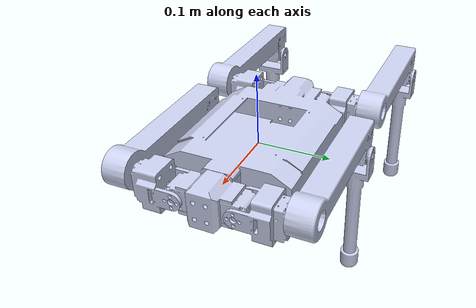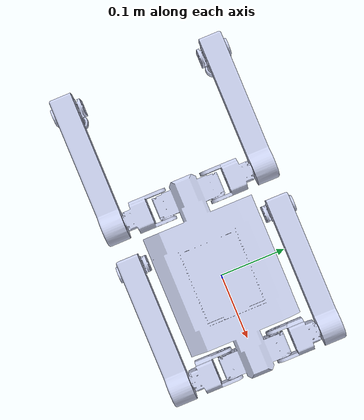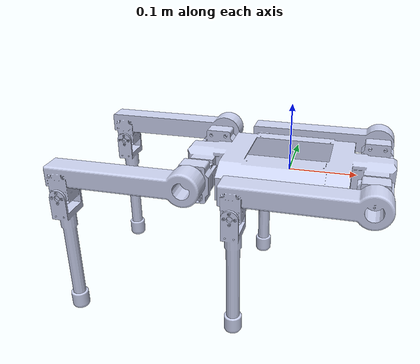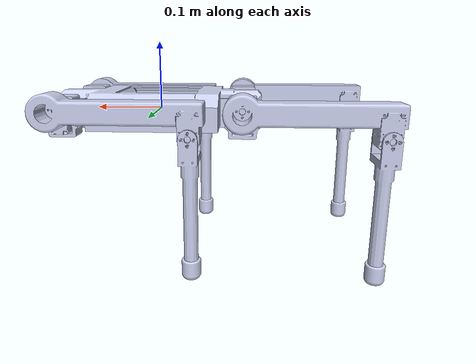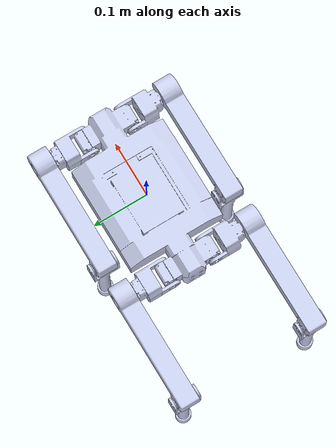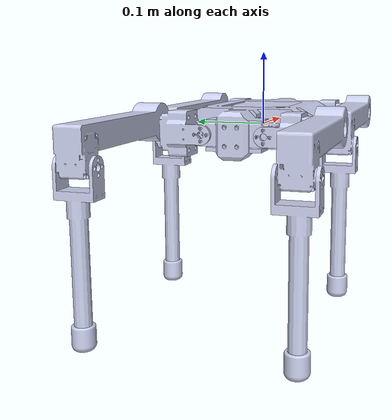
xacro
<?xml version="1.0"?>
<robot name="mintchoco1" xmlns:xacro="http://ros.org/wiki/xacro">

  <!-- Import Rviz colors -->

  <!-- Import all Gazebo-customization elements, including Gazebo colors -->
  <xacro:include filename="$(find mintchoco1_description)/urdf/mintchoco1.gazebo.xacro" />

  <!-- Import Transmission -->
  <xacro:include filename="$(find mintchoco1_description)/urdf/mintchoco1.transmission.xacro" />

  <!-- Import URDF -->
  <xacro:include filename="$(find mintchoco1_description)/urdf/mintchoco1.urdf2.xacro" />

</robot>

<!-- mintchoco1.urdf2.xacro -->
<robot name="mintchoco1" xmlns:xacro="http://ros.org/wiki/xacro">
  <xacro:include filename="$(find mintchoco1_description)/urdf/properties.urdf.xacro" />
  <!-- Fix the base_link -->
  <link name="world"/>

  <joint name="planar" type="planar">
    <parent link="world"/>
    <child link="base_link"/>
     <origin xyz="0.0 0.0 0.0" rpy="0 0 0" />
  </joint>

  <link name="base_link">
    <inertial>
      <origin
        xyz="0.00035091 -1.3484E-17 -0.0043115"
        rpy="0 0 0" />
      <mass
        value="${base_mass}" />
            <inertia ixx="${(1/12) * base_mass * (base_y_length * base_y_length + base_z_length * base_z_length)}" ixy="0.0" ixz="0.0"
                     iyy="${(1/12) * base_mass * (base_x_length * base_x_length + base_z_length * base_z_length)}" iyz="0.0"
                     izz="${(1/12) * base_mass * (base_x_length * base_x_length + base_y_length * base_y_length)}" />
    </inertial>
    <visual>
      <origin
        xyz="0 0 0"
        rpy="0 0 0" />
      <geometry>
        <mesh
          filename="package://mintchoco1_description/meshes/base_link.STL" />
      </geometry>
      <material
        name="">
        <color
          rgba="0.79216 0.81961 0.93333 1" />
      </material>
    </visual>
    <collision>
      <origin
        xyz="0 0 0"
        rpy="0 0 0" />
      <geometry>
        <mesh
          filename="package://mintchoco1_description/meshes/base_link.STL" />
      </geometry>
    </collision>
  </link>

  <link
    name="LF_link1">
    <inertial>
      <origin
        xyz="-0.024455 0.035154 0.00033392"
        rpy="0 0 0" />
      <mass
        value="${link1_mass}" />
                <inertia ixx="${(1/12) * link1_mass * (link1_y_length * link1_y_length + link1_z_length * link1_z_length)}" ixy="0.0" ixz="0.0"
                         iyy="${(1/12) * link1_mass * (link1_x_length * link1_x_length + link1_z_length * link1_z_length)}" iyz="0.0"
                         izz="${(1/12) * link1_mass * (link1_x_length * link1_x_length + link1_y_length * link1_y_length)}" />
    </inertial>
    <visual>
      <origin
        xyz="0 0 0"
        rpy="0 0 0" />
      <geometry>
        <mesh
          filename="package://mintchoco1_description/meshes/LF_link1.STL" />
      </geometry>
      <material
        name="">
        <color
          rgba="0.79216 0.81961 0.93333 1" />
      </material>
    </visual>
    <collision>
      <origin
        xyz="0 0 0"
        rpy="0 0 0" />
      <geometry>
        <mesh
          filename="package://mintchoco1_description/meshes/LF_link1.STL" />
      </geometry>
    </collision>
  </link>
  <joint
    name="LF_joint1"
    type="revolute">
    <origin
      xyz="0.1515 0.04025 -0.00175"
      rpy="0 0 0" />
    <parent
      link="base_link" />
    <child
      link="LF_link1" />
    <axis
      xyz="-0.99995 0 0.010204" />
    <limit
      lower="-3.14"
      upper="3.14"
      effort="10"
      velocity="4.8" />
    <!--dynamics damping ="0.7"/-->
  </joint>
  <link
    name="LF_link2">
    <inertial>
      <origin
        xyz="0.00096259 -0.097555 -0.0025994"
        rpy="0 0 0" />
      <mass
        value="${link2_mass}" />
                <inertia ixx="${(1/12) * link2_mass * (link2_y_length * link2_y_length + link2_z_length * link2_z_length)}" ixy="0.0" ixz="0.0"
                         iyy="${(1/12) * link2_mass * (link2_x_length * link2_x_length + link2_z_length * link2_z_length)}" iyz="0.0"
                         izz="${(1/12) * link2_mass * (link2_x_length * link2_x_length + link2_y_length * link2_y_length)}" />
    </inertial>
    <visual>
      <origin
        xyz="0 0 0"
        rpy="0 0 0" />
      <geometry>
        <mesh
          filename="package://mintchoco1_description/meshes/LF_link2.STL" />
      </geometry>
      <material
        name="">
        <color
          rgba="0.79216 0.81961 0.93333 1" />
      </material>
    </visual>
    <collision>
      <origin
        xyz="0 0 0"
        rpy="0 0 0" />
      <geometry>
        <mesh
          filename="package://mintchoco1_description/meshes/LF_link2.STL" />
      </geometry>
    </collision>
  </link>
  <joint
    name="LF_joint2"
    type="revolute">
    <origin
      xyz="-0.024 0.079 0.0125"
      rpy="0 0 -1.5708" />
    <parent
      link="LF_link1" />
    <child
      link="LF_link2" />
    <axis
      xyz="1 0 0" />
    <limit
      lower="-3.14"
      upper="3.14"
      effort="10"
      velocity="4.8" />
    <!--dynamics damping ="0.7"/-->
  </joint>
  <link
    name="LF_link3">
    <inertial>
      <origin
        xyz="0.021928 4.0475E-05 -0.1015"
        rpy="0 0 0" />
      <mass
        value="${link3_mass}" />
                <inertia ixx="${(1/12) * link3_mass * (link3_y_length * link3_y_length + link3_z_length * link3_z_length)}" ixy="0.0" ixz="0.0"
                         iyy="${(1/12) * link3_mass * (link3_x_length * link3_x_length + link3_z_length * link3_z_length)}" iyz="0.0"
                         izz="${(1/12) * link3_mass * (link3_x_length * link3_x_length + link3_y_length * link3_y_length)}" />
    </inertial>
    <visual>
      <origin
        xyz="0 0 0"
        rpy="0 0 0" />
      <geometry>
        <mesh
          filename="package://mintchoco1_description/meshes/LF_link3.STL" />
      </geometry>
      <material
        name="">
        <color
          rgba="0.79216 0.81961 0.93333 1" />
      </material>
    </visual>
    <collision>
      <origin
        xyz="0 0 0"
        rpy="0 0 0" />
      <geometry>
        <mesh
          filename="package://mintchoco1_description/meshes/LF_link3.STL" />
      </geometry>
    </collision>
  </link>
  <joint
    name="LF_joint3"
    type="revolute">
    <origin
      xyz="-0.022 -0.18525 -0.03025"
      rpy="0 0 0" />
    <parent
      link="LF_link2" />
    <child
      link="LF_link3" />
    <axis
      xyz="-1 -0.0017021 0" />
    <limit
      lower="-3.14"
      upper="3.14"
      effort="10"
      velocity="4.8" />
    <!--dynamics damping ="0.7"/-->
  </joint>
  <link
    name="RF_link1">
    <inertial>
      <origin
        xyz="-0.024443 -0.035154 0.00032454"
        rpy="0 0 0" />
      <mass
        value="${link1_mass}" />
                <inertia ixx="${(1/12) * link1_mass * (link1_y_length * link1_y_length + link1_z_length * link1_z_length)}" ixy="0.0" ixz="0.0"
                         iyy="${(1/12) * link1_mass * (link1_x_length * link1_x_length + link1_z_length * link1_z_length)}" iyz="0.0"
                         izz="${(1/12) * link1_mass * (link1_x_length * link1_x_length + link1_y_length * link1_y_length)}" />
    </inertial>
    <visual>
      <origin
        xyz="0 0 0"
        rpy="0 0 0" />
      <geometry>
        <mesh
          filename="package://mintchoco1_description/meshes/RF_link1.STL" />
      </geometry>
      <material
        name="">
        <color
          rgba="0.79216 0.81961 0.93333 1" />
      </material>
    </visual>
    <collision>
      <origin
        xyz="0 0 0"
        rpy="0 0 0" />
      <geometry>
        <mesh
          filename="package://mintchoco1_description/meshes/RF_link1.STL" />
      </geometry>
    </collision>
  </link>
  <joint
    name="RF_joint1"
    type="revolute">
    <origin
      xyz="0.1515 -0.04025 -0.00175"
      rpy="0 0 0" />
    <parent
      link="base_link" />
    <child
      link="RF_link1" />
    <axis
      xyz="0.99999 0 0.005102" />
    <limit
      lower="-3.14"
      upper="3.14"
      effort="10"
      velocity="4.8" />
    <!--dynamics damping ="0.7"/-->
  </joint>
  <link
    name="RF_link2">
    <inertial>
      <origin
        xyz="-0.00096259 -0.097559 -0.0025994"
        rpy="0 0 0" />
      <mass
        value="${link2_mass}" />
                <inertia ixx="${(1/12) * link2_mass * (link2_y_length * link2_y_length + link2_z_length * link2_z_length)}" ixy="0.0" ixz="0.0"
                         iyy="${(1/12) * link2_mass * (link2_x_length * link2_x_length + link2_z_length * link2_z_length)}" iyz="0.0"
                         izz="${(1/12) * link2_mass * (link2_x_length * link2_x_length + link2_y_length * link2_y_length)}" />
    </inertial>
    <visual>
      <origin
        xyz="0 0 0"
        rpy="0 0 0" />
      <geometry>
        <mesh
          filename="package://mintchoco1_description/meshes/RF_link2.STL" />
      </geometry>
      <material
        name="">
        <color
          rgba="0.79216 0.81961 0.93333 1" />
      </material>
    </visual>
    <collision>
      <origin
        xyz="0 0 0"
        rpy="0 0 0" />
      <geometry>
        <mesh
          filename="package://mintchoco1_description/meshes/RF_link2.STL" />
      </geometry>
    </collision>
  </link>
  <joint
    name="RF_joint2"
    type="revolute">
    <origin
      xyz="-0.024 -0.079 0.0125"
      rpy="0 0 -1.5708" />
    <parent
      link="RF_link1" />
    <child
      link="RF_link2" />
    <axis
      xyz="1 0 0" />
    <limit
      lower="-3.14"
      upper="3.14"
      effort="10"
      velocity="4.8" />
    <!--dynamics damping ="0.7"/-->
  </joint>
  <link
    name="RF_link3">
    <inertial>
      <origin
        xyz="-0.021928 -4.0475E-05 -0.1015"
        rpy="0 0 0" />
      <mass
        value="${link3_mass}" />
                <inertia ixx="${(1/12) * link3_mass * (link3_y_length * link3_y_length + link3_z_length * link3_z_length)}" ixy="0.0" ixz="0.0"
                         iyy="${(1/12) * link3_mass * (link3_x_length * link3_x_length + link3_z_length * link3_z_length)}" iyz="0.0"
                         izz="${(1/12) * link3_mass * (link3_x_length * link3_x_length + link3_y_length * link3_y_length)}" />
    </inertial>
    <visual>
      <origin
        xyz="0 0 0"
        rpy="0 0 0" />
      <geometry>
        <mesh
          filename="package://mintchoco1_description/meshes/RF_link3.STL" />
      </geometry>
      <material
        name="">
        <color
          rgba="0.79216 0.81961 0.93333 1" />
      </material>
    </visual>
    <collision>
      <origin
        xyz="0 0 0"
        rpy="0 0 0" />
      <geometry>
        <mesh
          filename="package://mintchoco1_description/meshes/RF_link3.STL" />
      </geometry>
    </collision>
  </link>
  <joint
    name="RF_joint3"
    type="revolute">
    <origin
      xyz="0.022 -0.18525 -0.03025"
      rpy="0 0 0" />
    <parent
      link="RF_link2" />
    <child
      link="RF_link3" />
    <axis
      xyz="-1 -0.0017021 0" />
    <limit
      lower="-3.14"
      upper="3.14"
      effort="10"
      velocity="4.8" />
    <!--dynamics damping ="0.7"/-->
  </joint>
  <link
    name="LB_link1">
    <inertial>
      <origin
        xyz="-0.024455 0.035154 0.00033392"
        rpy="0 0 0" />
      <mass
        value="${link1_mass}" />
                <inertia ixx="${(1/12) * link1_mass * (link1_y_length * link1_y_length + link1_z_length * link1_z_length)}" ixy="0.0" ixz="0.0"
                         iyy="${(1/12) * link1_mass * (link1_x_length * link1_x_length + link1_z_length * link1_z_length)}" iyz="0.0"
                         izz="${(1/12) * link1_mass * (link1_x_length * link1_x_length + link1_y_length * link1_y_length)}" />
    </inertial>
    <visual>
      <origin
        xyz="0 0 0"
        rpy="0 0 0" />
      <geometry>
        <mesh
          filename="package://mintchoco1_description/meshes/LB_link1.STL" />
      </geometry>
      <material
        name="">
        <color
          rgba="0.79216 0.81961 0.93333 1" />
      </material>
    </visual>
    <collision>
      <origin
        xyz="0 0 0"
        rpy="0 0 0" />
      <geometry>
        <mesh
          filename="package://mintchoco1_description/meshes/LB_link1.STL" />
      </geometry>
    </collision>
  </link>
  <joint
    name="LB_joint1"
    type="revolute">
    <origin
      xyz="-0.1025 0.04025 -0.00175"
      rpy="0 0 0" />
    <parent
      link="base_link" />
    <child
      link="LB_link1" />
    <axis
      xyz="-0.99995 0 -0.010204" />
    <limit
      lower="-3.14"
      upper="3.14"
      effort="10"
      velocity="4.8" />
    <!--dynamics damping ="0.7"/-->
  </joint>
  <link
    name="LB_link2">
    <inertial>
      <origin
        xyz="0.00096259 -0.097555 -0.0025994"
        rpy="0 0 0" />
      <mass
        value="${link2_mass}" />
                <inertia ixx="${(1/12) * link2_mass * (link2_y_length * link2_y_length + link2_z_length * link2_z_length)}" ixy="0.0" ixz="0.0"
                         iyy="${(1/12) * link2_mass * (link2_x_length * link2_x_length + link2_z_length * link2_z_length)}" iyz="0.0"
                         izz="${(1/12) * link2_mass * (link2_x_length * link2_x_length + link2_y_length * link2_y_length)}" />
    </inertial>
    <visual>
      <origin
        xyz="0 0 0"
        rpy="0 0 0" />
      <geometry>
        <mesh
          filename="package://mintchoco1_description/meshes/LB_link2.STL" />
      </geometry>
      <material
        name="">
        <color
          rgba="0.79216 0.81961 0.93333 1" />
      </material>
    </visual>
    <collision>
      <origin
        xyz="0 0 0"
        rpy="0 0 0" />
      <geometry>
        <mesh
          filename="package://mintchoco1_description/meshes/LB_link2.STL" />
      </geometry>
    </collision>
  </link>
  <joint
    name="LB_joint2"
    type="revolute">
    <origin
      xyz="-0.024 0.079 0.0125"
      rpy="0 0 -1.5708" />
    <parent
      link="LB_link1" />
    <child
      link="LB_link2" />
    <axis
      xyz="1 0 0" />
    <limit
      lower="-3.14"
      upper="3.14"
      effort="10"
      velocity="4.8" />
    <!--dynamics damping ="0.7"/-->
  </joint>
  <link
    name="LB_link3">
    <inertial>
      <origin
        xyz="0.021928 3.6546E-05 -0.1015"
        rpy="0 0 0" />
      <mass
        value="${link3_mass}" />
                <inertia ixx="${(1/12) * link3_mass * (link3_y_length * link3_y_length + link3_z_length * link3_z_length)}" ixy="0.0" ixz="0.0"
                         iyy="${(1/12) * link3_mass * (link3_x_length * link3_x_length + link3_z_length * link3_z_length)}" iyz="0.0"
                         izz="${(1/12) * link3_mass * (link3_x_length * link3_x_length + link3_y_length * link3_y_length)}" />
    </inertial>
    <visual>
      <origin
        xyz="0 0 0"
        rpy="0 0 0" />
      <geometry>
        <mesh
          filename="package://mintchoco1_description/meshes/LB_link3.STL" />
      </geometry>
      <material
        name="">
        <color
          rgba="0.79216 0.81961 0.93333 1" />
      </material>
    </visual>
    <collision>
      <origin
        xyz="0 0 0"
        rpy="0 0 0" />
      <geometry>
        <mesh
          filename="package://mintchoco1_description/meshes/LB_link3.STL" />
      </geometry>
    </collision>
  </link>
  <joint
    name="LB_joint3"
    type="revolute">
    <origin
      xyz="-0.022 -0.18525 -0.03025"
      rpy="0 0 0" />
    <parent
      link="LB_link2" />
    <child
      link="LB_link3" />
    <axis
      xyz="-1 0 0" />
    <limit
      lower="-3.14"
      upper="3.14"
      effort="10"
      velocity="4.8" />
    <!--dynamics damping ="0.7"/-->
  </joint>
  <link
    name="RB_link1">
    <inertial>
      <origin
        xyz="-0.024443 -0.035154 0.00032454"
        rpy="0 0 0" />
      <mass
        value="${link1_mass}" />
                <inertia ixx="${(1/12) * link1_mass * (link1_y_length * link1_y_length + link1_z_length * link1_z_length)}" ixy="0.0" ixz="0.0"
                         iyy="${(1/12) * link1_mass * (link1_x_length * link1_x_length + link1_z_length * link1_z_length)}" iyz="0.0"
                         izz="${(1/12) * link1_mass * (link1_x_length * link1_x_length + link1_y_length * link1_y_length)}" />
    </inertial>
    <visual>
      <origin
        xyz="0 0 0"
        rpy="0 0 0" />
      <geometry>
        <mesh
          filename="package://mintchoco1_description/meshes/RB_link1.STL" />
      </geometry>
      <material
        name="">
        <color
          rgba="0.79216 0.81961 0.93333 1" />
      </material>
    </visual>
    <collision>
      <origin
        xyz="0 0 0"
        rpy="0 0 0" />
      <geometry>
        <mesh
          filename="package://mintchoco1_description/meshes/RB_link1.STL" />
      </geometry>
    </collision>
  </link>
  <joint
    name="RB_joint1"
    type="revolute">
    <origin
      xyz="-0.1025 -0.04025 -0.00175"
      rpy="0 0 0" />
    <parent
      link="base_link" />
    <child
      link="RB_link1" />
    <axis
      xyz="0.99999 0 0.005102" />
    <limit
      lower="-3.14"
      upper="3.14"
      effort="10"
      velocity="4.8" />
    <!--dynamics damping ="0.7"/-->
  </joint>
  <link
    name="RB_link2">
    <inertial>
      <origin
        xyz="-0.00096259 -0.097559 -0.0025994"
        rpy="0 0 0" />
      <mass
        value="${link2_mass}" />
                <inertia ixx="${(1/12) * link2_mass * (link2_y_length * link2_y_length + link2_z_length * link2_z_length)}" ixy="0.0" ixz="0.0"
                         iyy="${(1/12) * link2_mass * (link2_x_length * link2_x_length + link2_z_length * link2_z_length)}" iyz="0.0"
                         izz="${(1/12) * link2_mass * (link2_x_length * link2_x_length + link2_y_length * link2_y_length)}" />
    </inertial>
    <visual>
      <origin
        xyz="0 0 0"
        rpy="0 0 0" />
      <geometry>
        <mesh
          filename="package://mintchoco1_description/meshes/RB_link2.STL" />
      </geometry>
      <material
        name="">
        <color
          rgba="0.79216 0.81961 0.93333 1" />
      </material>
    </visual>
    <collision>
      <origin
        xyz="0 0 0"
        rpy="0 0 0" />
      <geometry>
        <mesh
          filename="package://mintchoco1_description/meshes/RB_link2.STL" />
      </geometry>
    </collision>
  </link>
  <joint
    name="RB_joint2"
    type="revolute">
    <origin
      xyz="-0.024 -0.079 0.0125"
      rpy="0 0 -1.5708" />
    <parent
      link="RB_link1" />
    <child
      link="RB_link2" />
    <axis
      xyz="1 0 0" />
    <limit
      lower="-3.14"
      upper="3.14"
      effort="10"
      velocity="4.8" />
    <!--dynamics damping ="0.7"/-->
  </joint>
  <link
    name="RB_link3">
    <inertial>
      <origin
        xyz="-0.021928 -4.0475E-05 -0.1015"
        rpy="0 0 0" />
      <mass
        value="${link3_mass}" />
                <inertia ixx="${(1/12) * link3_mass * (link3_y_length * link3_y_length + link3_z_length * link3_z_length)}" ixy="0.0" ixz="0.0"
                         iyy="${(1/12) * link3_mass * (link3_x_length * link3_x_length + link3_z_length * link3_z_length)}" iyz="0.0"
                         izz="${(1/12) * link3_mass * (link3_x_length * link3_x_length + link3_y_length * link3_y_length)}" />
    </inertial>
    <visual>
      <origin
        xyz="0 0 0"
        rpy="0 0 0" />
      <geometry>
        <mesh
          filename="package://mintchoco1_description/meshes/RB_link3.STL" />
      </geometry>
      <material
        name="">
        <color
          rgba="0.79216 0.81961 0.93333 1" />
      </material>
    </visual>
    <collision>
      <origin
        xyz="0 0 0"
        rpy="0 0 0" />
      <geometry>
        <mesh
          filename="package://mintchoco1_description/meshes/RB_link3.STL" />
      </geometry>
    </collision>
  </link>
  <joint
    name="RB_joint3"
    type="revolute">
    <origin
      xyz="0.022 -0.18525 -0.03025"
      rpy="0 0 0" />
    <parent
      link="RB_link2" />
    <child
      link="RB_link3" />
    <axis
      xyz="-1 0.0017021 0" />
    <limit
      lower="-3.14"
      upper="3.14"
      effort="10"
      velocity="4.8" />
    <!--dynamics damping ="0.7"/-->
  </joint>
</robot>

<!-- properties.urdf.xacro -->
<robot xmlns:xacro="http://ros.org/wiki/xacro">

    <xacro:property name="link1_mass" value="0.250" />
    <xacro:property name="link1_x_length" value="0.05" />
    <xacro:property name="link1_y_length" value="0.058" />
    <xacro:property name="link1_z_length" value="0.0665" />

    <xacro:property name="link2_mass" value="0.125" />
    <xacro:property name="link2_x_length" value="0.034" />
    <xacro:property name="link2_y_length" value="0.229" />
    <xacro:property name="link2_z_length" value="0.0665" />

    <xacro:property name="link3_mass" value="0.125" />
    <xacro:property name="link3_x_length" value="0.02" />
    <xacro:property name="link3_y_length" value="0.02" />
    <xacro:property name="link3_z_length" value="0.205" />

    <xacro:property name="base_mass" value="2.0" />
    <xacro:property name="base_x_length" value="0.3" />
    <xacro:property name="base_y_length" value="0.17" />
    <xacro:property name="base_z_length" value="0.066" />
</robot>
